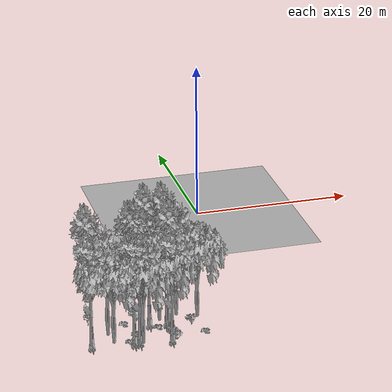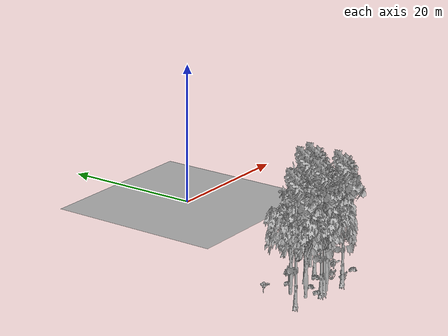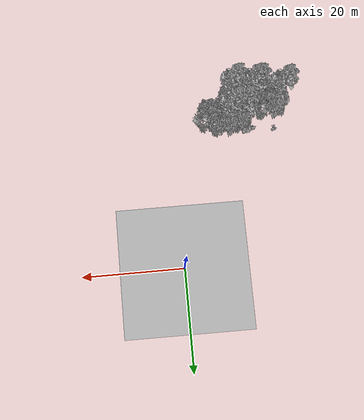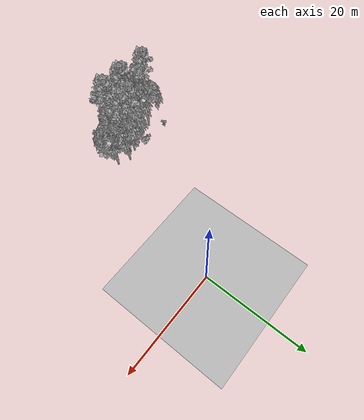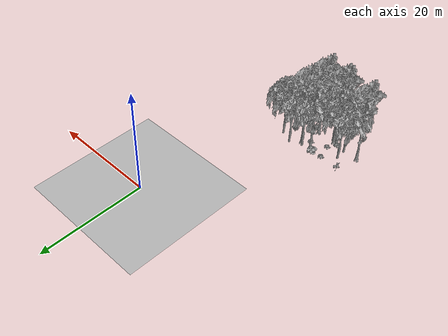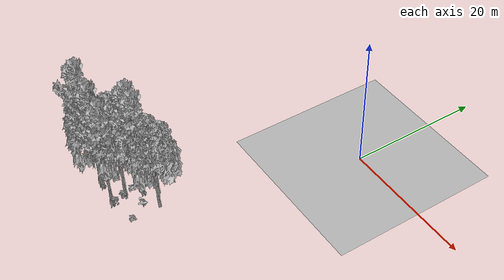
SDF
<sdf version="1.7">
 <world name="default">
  <model name="ground_plane">
   <static>1</static>
   <link name="link">
    <collision name="collision">
     <pose>-50 0 0 0 -0 0</pose>
     <geometry><plane><normal>0 0 1</normal><size>80 80</size></plane></geometry>
     <surface><contact><ode><min_depth>0.01</min_depth><max_vel>0</max_vel></ode></contact></surface>
    </collision>
    <visual name="grass">
     <cast_shadows>0</cast_shadows>
     <geometry>
      <mesh>
       <scale>0.46714285714285714 0.46714285714285714 0.1</scale>
       <uri>file://grass_plane/meshes/grass_plane.dae</uri>
      </mesh>
     </geometry>
    </visual>
   </link>
  </model>
  <model name="Tree 70">
   <static>1</static>
   <pose>-16.164357793275258 -32.23471431481692 0 1.57079 -0 0</pose>
   <link name="link">
    <collision name="collision">
     <geometry><mesh><scale>3.5 5 3.5</scale><uri>model://tree_9/meshes/tree_9.obj</uri></mesh></geometry>
    </collision>
    <visual name="visual">
     <geometry><mesh><scale>3.5 5 3.5</scale><uri>model://tree_9/meshes/tree_9.obj</uri></mesh></geometry>
    </visual>
   </link>
  </model>
  <model name="Tree 103">
   <static>1</static>
   <pose>-12.128446864101388 -27.467152603776572 0 1.57079 -0 0</pose>
   <link name="link">
    <collision name="collision">
     <geometry><mesh><scale>3.5 5 3.5</scale><uri>model://tree_2/meshes/tree_2.obj</uri></mesh></geometry>
    </collision>
    <visual name="visual">
     <geometry><mesh><scale>3.5 5 3.5</scale><uri>model://tree_2/meshes/tree_2.obj</uri></mesh></geometry>
    </visual>
   </link>
  </model>
  <model name="Tree 108">
   <static>1</static>
   <pose>-7.659422379516528 -27.68359190640176 0 1.57079 -0 0</pose>
   <link name="link">
    <collision name="collision">
     <geometry><mesh><scale>3.5 5 3.5</scale><uri>model://tree_2/meshes/tree_2.obj</uri></mesh></geometry>
    </collision>
    <visual name="visual">
     <geometry><mesh><scale>3.5 5 3.5</scale><uri>model://tree_2/meshes/tree_2.obj</uri></mesh></geometry>
    </visual>
   </link>
  </model>
  <model name="Tree 177">
   <static>1</static>
   <pose>-9.915440012654912 -26.65704424894992 0 1.57079 -0 0</pose>
   <link name="link">
    <collision name="collision">
     <geometry><mesh><scale>3.5 5 3.5</scale><uri>model://tree_2/meshes/tree_2.obj</uri></mesh></geometry>
    </collision>
    <visual name="visual">
     <geometry><mesh><scale>3.5 5 3.5</scale><uri>model://tree_2/meshes/tree_2.obj</uri></mesh></geometry>
    </visual>
   </link>
  </model>
  <model name="Tree 265">
   <static>1</static>
   <pose>-13.416505673483147 -28.190653693049804 0 1.57079 -0 0</pose>
   <link name="link">
    <collision name="collision">
     <geometry><mesh><scale>3.5 5 3.5</scale><uri>model://tree_9/meshes/tree_9.obj</uri></mesh></geometry>
    </collision>
    <visual name="visual">
     <geometry><mesh><scale>3.5 5 3.5</scale><uri>model://tree_9/meshes/tree_9.obj</uri></mesh></geometry>
    </visual>
   </link>
  </model>
  <model name="Tree 283">
   <static>1</static>
   <pose>-11.356341142430438 -28.26798237505418 0 1.57079 -0 0</pose>
   <link name="link">
    <collision name="collision">
     <geometry><mesh><scale>3.5 5 3.5</scale><uri>model://tree_9/meshes/tree_9.obj</uri></mesh></geometry>
    </collision>
    <visual name="visual">
     <geometry><mesh><scale>3.5 5 3.5</scale><uri>model://tree_9/meshes/tree_9.obj</uri></mesh></geometry>
    </visual>
   </link>
  </model>
  <model name="Tree 305">
   <static>1</static>
   <pose>-18.662356024947876 -29.38510329692898 0 1.57079 -0 0</pose>
   <link name="link">
    <collision name="collision">
     <geometry><mesh><scale>3.5 5 3.5</scale><uri>model://tree_2/meshes/tree_2.obj</uri></mesh></geometry>
    </collision>
    <visual name="visual">
     <geometry><mesh><scale>3.5 5 3.5</scale><uri>model://tree_2/meshes/tree_2.obj</uri></mesh></geometry>
    </visual>
   </link>
  </model>
  <model name="Tree 348">
   <static>1</static>
   <pose>-15.527029137992514 -32.27255256975073 0 1.57079 -0 0</pose>
   <link name="link">
    <collision name="collision">
     <geometry><mesh><scale>3.5 5 3.5</scale><uri>model://tree_9/meshes/tree_9.obj</uri></mesh></geometry>
    </collision>
    <visual name="visual">
     <geometry><mesh><scale>3.5 5 3.5</scale><uri>model://tree_9/meshes/tree_9.obj</uri></mesh></geometry>
    </visual>
   </link>
  </model>
  <model name="Tree 496">
   <static>1</static>
   <pose>-11.923887042637517 -30.557354383171827 0 1.57079 -0 0</pose>
   <link name="link">
    <collision name="collision">
     <geometry><mesh><scale>3.5 5 3.5</scale><uri>model://tree_2/meshes/tree_2.obj</uri></mesh></geometry>
    </collision>
    <visual name="visual">
     <geometry><mesh><scale>3.5 5 3.5</scale><uri>model://tree_2/meshes/tree_2.obj</uri></mesh></geometry>
    </visual>
   </link>
  </model>
  <model name="Tree 517">
   <static>1</static>
   <pose>-18.43682974528441 -31.435276901005036 0 1.57079 -0 0</pose>
   <link name="link">
    <collision name="collision">
     <geometry><mesh><scale>3.5 5 3.5</scale><uri>model://tree_2/meshes/tree_2.obj</uri></mesh></geometry>
    </collision>
    <visual name="visual">
     <geometry><mesh><scale>3.5 5 3.5</scale><uri>model://tree_2/meshes/tree_2.obj</uri></mesh></geometry>
    </visual>
   </link>
  </model>
  <model name="Tree 594">
   <static>1</static>
   <pose>-20.992912927335492 -31.66656922623914 0 1.57079 -0 0</pose>
   <link name="link">
    <collision name="collision">
     <geometry><mesh><scale>3.5 5 3.5</scale><uri>model://tree_9/meshes/tree_9.obj</uri></mesh></geometry>
    </collision>
    <visual name="visual">
     <geometry><mesh><scale>3.5 5 3.5</scale><uri>model://tree_9/meshes/tree_9.obj</uri></mesh></geometry>
    </visual>
   </link>
  </model>
  <model name="Tree 623">
   <static>1</static>
   <pose>-15.270541318593843 -32.390696848771086 0 1.57079 -0 0</pose>
   <link name="link">
    <collision name="collision">
     <geometry><mesh><scale>3.5 5 3.5</scale><uri>model://tree_2/meshes/tree_2.obj</uri></mesh></geometry>
    </collision>
    <visual name="visual">
     <geometry><mesh><scale>3.5 5 3.5</scale><uri>model://tree_2/meshes/tree_2.obj</uri></mesh></geometry>
    </visual>
   </link>
  </model>
  <model name="Tree 625">
   <static>1</static>
   <pose>-11.845301944697109 -32.635423255338026 0 1.57079 -0 0</pose>
   <link name="link">
    <collision name="collision">
     <geometry><mesh><scale>3.5 5 3.5</scale><uri>model://tree_9/meshes/tree_9.obj</uri></mesh></geometry>
    </collision>
    <visual name="visual">
     <geometry><mesh><scale>3.5 5 3.5</scale><uri>model://tree_9/meshes/tree_9.obj</uri></mesh></geometry>
    </visual>
   </link>
  </model>
  <model name="Bush 26">
   <static>1</static>
   <pose>-14.753019877682267 -27.047006853856217 0 1.57079 -0 0</pose>
   <link name="link">
    <collision name="collision">
     <geometry><mesh><scale>2 2 2</scale><uri>model://bush_1/meshes/bush_1.obj</uri></mesh></geometry>
     <surface><contact><collide_without_contact>false</collide_without_contact></contact></surface>
    </collision>
    <visual name="visual">
     <geometry><mesh><scale>2 2 2</scale><uri>model://bush_1/meshes/bush_1.obj</uri></mesh></geometry>
    </visual>
   </link>
  </model>
  <model name="Bush 45">
   <static>1</static>
   <pose>-12.699483341038068 -29.315117969790965 0 1.57079 -0 0</pose>
   <link name="link">
    <collision name="collision">
     <geometry><mesh><scale>2 2 2</scale><uri>model://bush_2/meshes/bush_2.obj</uri></mesh></geometry>
     <surface><contact><collide_without_contact>false</collide_without_contact></contact></surface>
    </collision>
    <visual name="visual">
     <geometry><mesh><scale>2 2 2</scale><uri>model://bush_2/meshes/bush_2.obj</uri></mesh></geometry>
    </visual>
   </link>
  </model>
  <model name="Bush 90">
   <static>1</static>
   <pose>-7.716166717771852 -31.698952552392655 0 1.57079 -0 0</pose>
   <link name="link">
    <collision name="collision">
     <geometry><mesh><scale>2 2 2</scale><uri>model://bush_2/meshes/bush_2.obj</uri></mesh></geometry>
     <surface><contact><collide_without_contact>false</collide_without_contact></contact></surface>
    </collision>
    <visual name="visual">
     <geometry><mesh><scale>2 2 2</scale><uri>model://bush_2/meshes/bush_2.obj</uri></mesh></geometry>
    </visual>
   </link>
  </model>
  <model name="Bush 156">
   <static>1</static>
   <pose>-20.270758205462833 -26.539828226260667 0 1.57079 -0 0</pose>
   <link name="link">
    <collision name="collision">
     <geometry><mesh><scale>2 2 2</scale><uri>model://bush_5/meshes/bush_5.obj</uri></mesh></geometry>
     <surface><contact><collide_without_contact>false</collide_without_contact></contact></surface>
    </collision>
    <visual name="visual">
     <geometry><mesh><scale>2 2 2</scale><uri>model://bush_5/meshes/bush_5.obj</uri></mesh></geometry>
    </visual>
   </link>
  </model>
  <model name="Bush 212">
   <static>1</static>
   <pose>-16.641363436609396 -31.97698674099925 0 1.57079 -0 0</pose>
   <link name="link">
    <collision name="collision">
     <geometry><mesh><scale>2 2 2</scale><uri>model://bush_2/meshes/bush_2.obj</uri></mesh></geometry>
     <surface><contact><collide_without_contact>false</collide_without_contact></contact></surface>
    </collision>
    <visual name="visual">
     <geometry><mesh><scale>2 2 2</scale><uri>model://bush_2/meshes/bush_2.obj</uri></mesh></geometry>
    </visual>
   </link>
  </model>
  <model name="Bush 227">
   <static>1</static>
   <pose>-16.364175105941285 -27.56162358001753 0 1.57079 -0 0</pose>
   <link name="link">
    <collision name="collision">
     <geometry><mesh><scale>2 2 2</scale><uri>model://bush_2/meshes/bush_2.obj</uri></mesh></geometry>
     <surface><contact><collide_without_contact>false</collide_without_contact></contact></surface>
    </collision>
    <visual name="visual">
     <geometry><mesh><scale>2 2 2</scale><uri>model://bush_2/meshes/bush_2.obj</uri></mesh></geometry>
    </visual>
   </link>
  </model>
  <model name="Bush 370">
   <static>1</static>
   <pose>-15.570251680940359 -30.32289729878917 0 1.57079 -0 0</pose>
   <link name="link">
    <collision name="collision">
     <geometry><mesh><scale>2 2 2</scale><uri>model://bush_2/meshes/bush_2.obj</uri></mesh></geometry>
     <surface><contact><collide_without_contact>false</collide_without_contact></contact></surface>
    </collision>
    <visual name="visual">
     <geometry><mesh><scale>2 2 2</scale><uri>model://bush_2/meshes/bush_2.obj</uri></mesh></geometry>
    </visual>
   </link>
  </model>
  <model name="Bush 373">
   <static>1</static>
   <pose>-11.330726011257667 -32.50098602904718 0 1.57079 -0 0</pose>
   <link name="link">
    <collision name="collision">
     <geometry><mesh><scale>2 2 2</scale><uri>model://bush_4/meshes/bush_4.obj</uri></mesh></geometry>
     <surface><contact><collide_without_contact>false</collide_without_contact></contact></surface>
    </collision>
    <visual name="visual">
     <geometry><mesh><scale>2 2 2</scale><uri>model://bush_4/meshes/bush_4.obj</uri></mesh></geometry>
    </visual>
   </link>
  </model>
  <model name="Bush 563">
   <static>1</static>
   <pose>-8.752953978131512 -29.505599914562026 0 1.57079 -0 0</pose>
   <link name="link">
    <collision name="collision">
     <geometry><mesh><scale>2 2 2</scale><uri>model://bush_0/meshes/bush_0.obj</uri></mesh></geometry>
     <surface><contact><collide_without_contact>false</collide_without_contact></contact></surface>
    </collision>
    <visual name="visual">
     <geometry><mesh><scale>2 2 2</scale><uri>model://bush_0/meshes/bush_0.obj</uri></mesh></geometry>
    </visual>
   </link>
  </model>
  <model name="Bush 582">
   <static>1</static>
   <pose>-11.684342582398681 -31.061912503919 0 1.57079 -0 0</pose>
   <link name="link">
    <collision name="collision">
     <geometry><mesh><scale>2 2 2</scale><uri>model://bush_4/meshes/bush_4.obj</uri></mesh></geometry>
     <surface><contact><collide_without_contact>false</collide_without_contact></contact></surface>
    </collision>
    <visual name="visual">
     <geometry><mesh><scale>2 2 2</scale><uri>model://bush_4/meshes/bush_4.obj</uri></mesh></geometry>
    </visual>
   </link>
  </model>
 </world>
</sdf>
